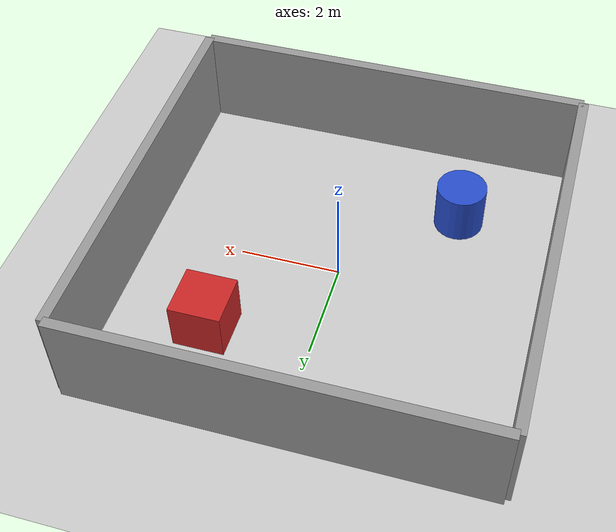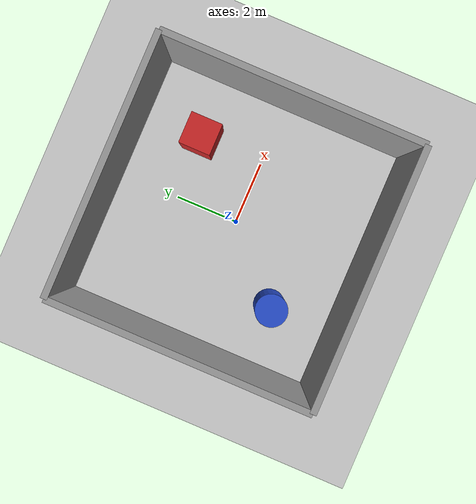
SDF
<?xml version="1.0" ?>
<sdf version="1.5">
  <world name="default">
    <include>
      <uri>model://sun</uri>
    </include>
    <include>
      <uri>model://ground_plane</uri>
    </include>

    <!-- Các bức tường tạo hình phòng -->
    <!-- Tường 1 -->
    <model name="wall1">
      <static>true</static>
      <link name="link">
        <collision name="collision">
          <geometry>
            <box>
              <size>8 0.2 2</size>
            </box>
          </geometry>
        </collision>
        <visual name="visual">
          <geometry>
            <box>
              <size>8 0.2 2</size>
            </box>
          </geometry>
          <material>
            <script>
              <uri>file://media/materials/scripts/gazebo.material</uri>
              <name>Gazebo/Grey</name>
            </script>
          </material>
        </visual>
      </link>
      <pose>0 4 1 0 0 0</pose>
    </model>

    <!-- Tường 2 -->
    <model name="wall2">
      <static>true</static>
      <link name="link">
        <collision name="collision">
          <geometry>
            <box>
              <size>8 0.2 2</size>
            </box>
          </geometry>
        </collision>
        <visual name="visual">
          <geometry>
            <box>
              <size>8 0.2 2</size>
            </box>
          </geometry>
          <material>
            <script>
              <uri>file://media/materials/scripts/gazebo.material</uri>
              <name>Gazebo/Grey</name>
            </script>
          </material>
        </visual>
      </link>
      <pose>0 -4 1 0 0 0</pose>
    </model>

    <!-- Tường 3 -->
    <model name="wall3">
      <static>true</static>
      <link name="link">
        <collision name="collision">
          <geometry>
            <box>
              <size>0.2 8 2</size>
            </box>
          </geometry>
        </collision>
        <visual name="visual">
          <geometry>
            <box>
              <size>0.2 8 2</size>
            </box>
          </geometry>
          <material>
            <script>
              <uri>file://media/materials/scripts/gazebo.material</uri>
              <name>Gazebo/Grey</name>
            </script>
          </material>
        </visual>
      </link>
      <pose>4 0 1 0 0 0</pose>
    </model>

    <!-- Tường 4 -->
    <model name="wall4">
      <static>true</static>
      <link name="link">
        <collision name="collision">
          <geometry>
            <box>
              <size>0.2 8 2</size>
            </box>
          </geometry>
        </collision>
        <visual name="visual">
          <geometry>
            <box>
              <size>0.2 8 2</size>
            </box>
          </geometry>
          <material>
            <script>
              <uri>file://media/materials/scripts/gazebo.material</uri>
              <name>Gazebo/Grey</name>
            </script>
          </material>
        </visual>
      </link>
      <pose>-4 0 1 0 0 0</pose>
    </model>

    <!-- Vật thể trong phòng -->
    <model name="box1">
      <static>true</static>
      <link name="link">
        <collision name="collision">
          <geometry>
            <box>
              <size>1 1 1</size>
            </box>
          </geometry>
        </collision>
        <visual name="visual">
          <geometry>
            <box>
              <size>1 1 1</size>
            </box>
          </geometry>
          <material>
            <script>
              <uri>file://media/materials/scripts/gazebo.material</uri>
              <name>Gazebo/Red</name>
            </script>
          </material>
        </visual>
      </link>
      <pose>2 2 0.5 0 0 0</pose>
    </model>

    <model name="cylinder1">
      <static>true</static>
      <link name="link">
        <collision name="collision">
          <geometry>
            <cylinder>
              <radius>0.5</radius>
              <length>1</length>
            </cylinder>
          </geometry>
        </collision>
        <visual name="visual">
          <geometry>
            <cylinder>
              <radius>0.5</radius>
              <length>1</length>
            </cylinder>
          </geometry>
          <material>
            <script>
              <uri>file://media/materials/scripts/gazebo.material</uri>
              <name>Gazebo/Blue</name>
            </script>
          </material>
        </visual>
      </link>
      <pose>-2 -2 0.5 0 0 0</pose>
    </model>
  </world>
</sdf>
